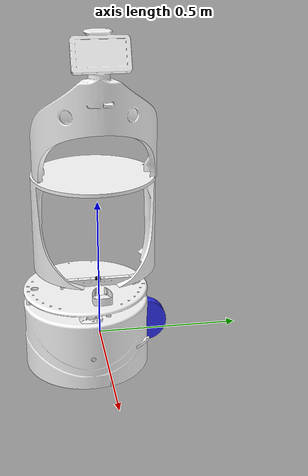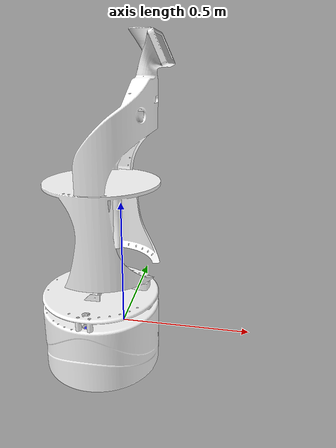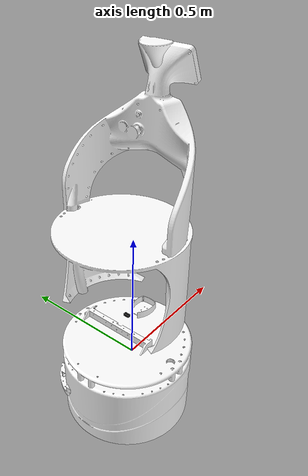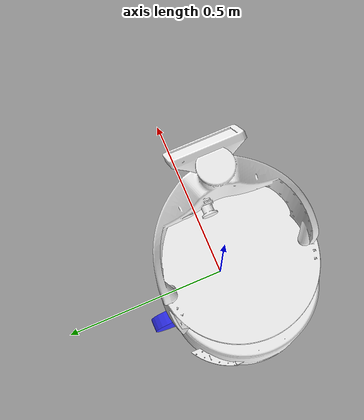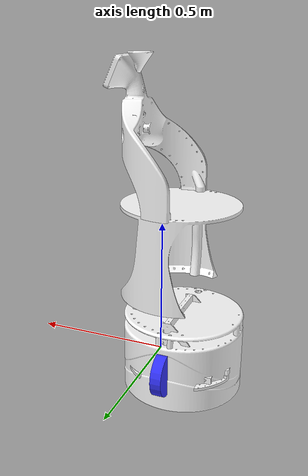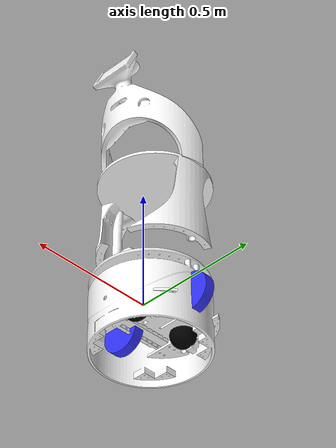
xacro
<?xml version="1.0" ?>
<robot name="robot_sbem" xmlns:xacro="http://www.ros.org/wiki/xacro">

<xacro:include filename="materials.xacro" />
<xacro:include filename="inertial_macros.xacro" />

<!-- BASE LINK -->

<link name="base_link">
</link>

<!-- BASE FOOTPRINT LINK -->
<joint name="base_footprint_joint" type="fixed">
    <parent link="base_link"/>
    <child link="base_footprint"/>
    <origin xyz="0 0 0" rpy="0 0 0"/>
</joint>

<link name="base_footprint">
</link>

<!-- BODY LINK -->

<joint name="chassis_joint" type="fixed">
    <parent link="base_link"/>
    <child link="chassis"/>
    <origin xyz="-0.1 0 0"/>
</joint>

<link name="chassis">
    <visual>
        <origin xyz="0.01 -0.04 -0.075"/>
        <geometry>
            <mesh filename="file://$(find robot_sbem)/meshes/cover_frame_1.stl" scale="0.001 0.001 0.001"/>
        </geometry>
        <material name="white"/>
    </visual>
    <collision>
        <origin xyz="0.10 -0.04 -0.075"/>
        <geometry>
            <mesh filename="file://$(find robot_sbem)/meshes/cover_frame_1.stl" scale="0.001 0.001 0.001"/>
        </geometry>
    </collision>
    <inertial>
        <origin xyz="0.01 -0.04 -0.075" rpy="0 0 0"/>
        <mass value="0.476900692892485"/>
        <inertia ixx="1.283383" iyy="1.267627" izz="1.750151" ixy="-0.000192" iyz="-0.005412" ixz="0.001357"/>
      </inertial>

</link>

<gazebo reference="chassis">
    <material>Gazebo/White</material>
</gazebo>

<link name="internal_body">
    <inertial>
      <origin xyz="-0.1 -0.04 -0.078" rpy="0 0 0"/>
      <mass value="0.54535521653018"/>
      <inertia ixx="0.220166" iyy="0.326028" izz="0.379994" ixy="-5.3e-05" iyz="-5e-06" ixz="-0.018753"/>
    </inertial>
    <visual>
        <origin xyz="-0.1 -0.04 -0.078"/>
      <geometry>
        <mesh filename="file://$(find robot_sbem)/meshes/base_link.stl" scale="0.001 0.001 0.001"/>
      </geometry>
      <material name="white"/>
    </visual>
    <collision>
        <origin xyz="-0.1 -0.04 -0.078"/>
      <geometry>
        <mesh filename="file://$(find robot_sbem)/meshes/base_link.stl" scale="0.001 0.001 0.001"/>
      </geometry>
    </collision>
  </link>

  <joint name="internal_body_joint" type="fixed">
    <origin xyz="0 0 0" rpy="0 0 0"/>
    <parent link="base_link"/>
    <child link="internal_body"/>
  </joint>

  <gazebo reference="internal_body">
        <material>Gazebo/Blue</material>
        <mu1>0.2</mu1>
        <mu2>0.2</mu2>
    </gazebo>

<!-- LEFT WHEEL LINK -->

<joint name="left_wheel_joint" type="continuous">
    <parent link="base_link"/>
    <child link="left_wheel"/>
    <origin xyz="-0.075 0.175 0" rpy="0 ${pi/2} 0" />
    <axis xyz="0 1 0"/>
</joint>

<link name="left_wheel">
    <visual>
        <geometry>
            <cylinder radius="0.08" length="0.04"/>
        </geometry>
        <material name="blue"/>
    </visual>
    <collision>
        <geometry>
          <cylinder radius="0.08" length="0.04"/>
        </geometry>
    </collision>
    <xacro:inertial_cylinder mass="1" length="0.04" radius="0.08">
        <origin xyz="0 0 0" rpy="0 0 0"/>
    </xacro:inertial_cylinder>
</link>

<gazebo reference="left_wheel">
    <material>Gazebo/Blue</material>
</gazebo>

<!-- RIGHT WHEEL LINK -->
<joint name="right_wheel_joint" type="continuous">
    <parent link="base_link"/>
    <child link="right_wheel"/>
    <origin xyz="-0.075 -0.175 0" rpy="0 ${pi/2} 0" />
    <axis xyz="0 1 0"/>
</joint>

<link name="right_wheel">
    <visual>
        <geometry>
          <cylinder radius="0.08" length="0.04"/>
        </geometry>
        <material name="blue"/>
    </visual>
    <collision>
        <geometry>
          <cylinder radius="0.08" length="0.04"/>
        </geometry>
    </collision>
    <xacro:inertial_cylinder mass="1" length="0.04" radius="0.08">
        <origin xyz="0 0 0" rpy="0 0 0"/>
    </xacro:inertial_cylinder>
</link>

<gazebo reference="right_wheel">
    <material>Gazebo/Blue</material>
</gazebo>

<!-- CASTER WHEEL LINK -->

<joint name="caster_wheel_joint_1" type="fixed">
    <parent link="chassis"/>
    <child link="caster_wheel_1"/>
    <origin xyz="0.14 0 -0.030"/>
</joint>

<link name="caster_wheel_1">
    <visual>
        <geometry>
            <sphere radius="0.05"/>
        </geometry>
        <material name="black"/>
    </visual>
    <collision>
        <geometry>
            <sphere radius="0.05"/>
        </geometry>
    </collision>
    <xacro:inertial_sphere mass="0.1" radius="0.05">
        <origin xyz="0 0 0" rpy="0 0 0"/>
    </xacro:inertial_sphere>
</link>

<gazebo reference="caster_wheel_1">
    <material>Gazebo/White</material>
    <mu1 value="0.001"/>
    <mu2 value="0.001"/>
</gazebo>

<joint name="caster_wheel_joint_2" type="fixed">
    <parent link="chassis"/>
    <child link="caster_wheel_2"/>
    <origin xyz="-0.1 0 -0.030"/>
</joint>

<link name="caster_wheel_2">
    <visual>
        <geometry>
            <sphere radius="0.05"/>
        </geometry>
        <material name="black"/>
    </visual>
    <collision>
        <geometry>
            <sphere radius="0.05"/>
        </geometry>
    </collision>
    <xacro:inertial_sphere mass="0.1" radius="0.08">
        <origin xyz="0 0 0" rpy="0 0 0"/>
    </xacro:inertial_sphere>
</link>

<gazebo reference="caster_wheel_2">
    <material>Gazebo/White</material>
    <mu1 value="0.001"/>
    <mu2 value="0.001"/>
</gazebo>

<link name="central_body">
    <inertial>
      <origin xyz="0.0 -0.05 -0.48" rpy="0 0 0"/>
      <mass value="0.460328263120194"/>
      <inertia ixx="0.905366" iyy="0.541365" izz="0.75836" ixy="-5.7e-05" iyz="-0.000152" ixz="0.05854"/>
    </inertial>
    <visual>
      <origin xyz="0.0 -0.05 -0.48" rpy="0 0 0"/>
      <geometry>
        <mesh filename="file://$(find robot_sbem)/meshes/central_body_1.stl" scale="0.001 0.001 0.001"/>
      </geometry>
      <material name="white"/>
    </visual>
    <collision>
      <origin xyz="0.0 -0.05 -0.48" rpy="0 0 0"/>
      <geometry>
        <mesh filename="file://$(find robot_sbem)/meshes/central_body_1.stl" scale="0.001 0.001 0.001"/>
      </geometry>
    </collision>
  </link>

  <joint name="joint_cover_base" type="fixed">
    <origin xyz="0.020 0 0.405" rpy="0 0 0"/>
    <parent link="chassis"/>
    <child link="central_body"/>
  </joint>

  <gazebo reference="central_body">
    <material>Gazebo/White</material>
    <mu1>0.2</mu1>
    <mu2>0.2</mu2>
  </gazebo>

  <link name="upper_body">
    <inertial>
      <origin xyz="-0.012447 -0.042954 -0.658" rpy="0 0 0"/>
      <mass value="0.509819302869698"/>
      <inertia ixx="0.505323" iyy="0.34562" izz="0.302736" ixy="-0.000304" iyz="-0.001097" ixz="-0.112705"/>
    </inertial>
    <visual>
      <origin xyz="-0.012447 -0.042954 -0.658" rpy="0 0 0"/>
      <geometry>
        <mesh filename="file://$(find robot_sbem)/meshes/upper_body_1.stl" scale="0.001 0.001 0.001"/>
      </geometry>
      <material name="white"/>
    </visual>
    <collision>
      <origin xyz="-0.012447 -0.042954 -0.658" rpy="0 0 0"/>
      <geometry>
        <mesh filename="file://$(find robot_sbem)/meshes/upper_body_1.stl" scale="0.001 0.001 0.001"/>
      </geometry>
    </collision>
  </link>

  <joint name="joint_upper_body" type="fixed">
    <origin xyz="0.0 0.0 0.171" rpy="0 0 0"/>
    <parent link="central_body"/>
    <child link="upper_body"/>
  </joint>

  <gazebo reference="upper_body">
    <material>Gazebo/White</material>
    <mu1>0.2</mu1>
    <mu2>0.2</mu2>
  </gazebo>

<!-- IMU SECTION-->

<joint name="imu_joint" type="fixed">
    <parent link="base_link"/>
    <child link="imu"/>
    <origin xyz="-0.03 0 0.2"/>
</joint>

<link name="imu">
    <visual>
        <geometry>
            <box size="0.01 0.02 0.01"/>
        </geometry>
        <material name="black"/>
    </visual>
    <collision>
        <geometry>
            <box size="0.01 0.02 0.01"/>
        </geometry>
    </collision>
    <xacro:inertial_box mass="0.001" x="0.30" y="0.27" z="0.12">
        <origin xyz="0 0 0" rpy="0 0 0"/>
    </xacro:inertial_box>
</link>

<gazebo reference="imu">
    <material>Gazebo/White</material>
</gazebo>

</robot>

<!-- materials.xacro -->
<robot name="robot_sbem" xmlns:xacro="http://www.ros.org/wiki/xacro" >

  <material name="white">
    <color rgba="1 1 1 1" />
  </material>

  <material name="orange">
      <color rgba="1 0.3 0.1 1"/>
  </material>

  <material name="blue">
      <color rgba="0.2 0.2 1 1"/>
  </material>

  <material name="black">
      <color rgba="0 0 0 1"/>
  </material>

  <material name="red">
    <color rgba="1 0 0 1"/>
</material>

</robot>
